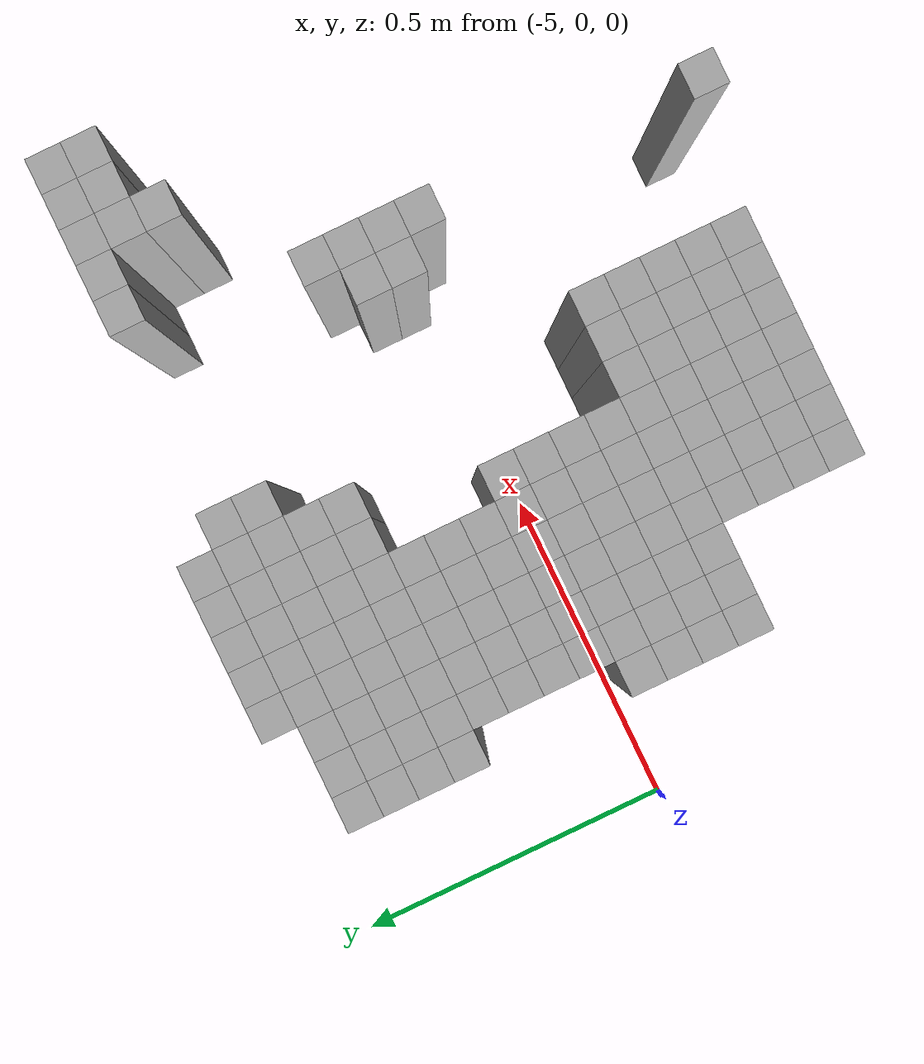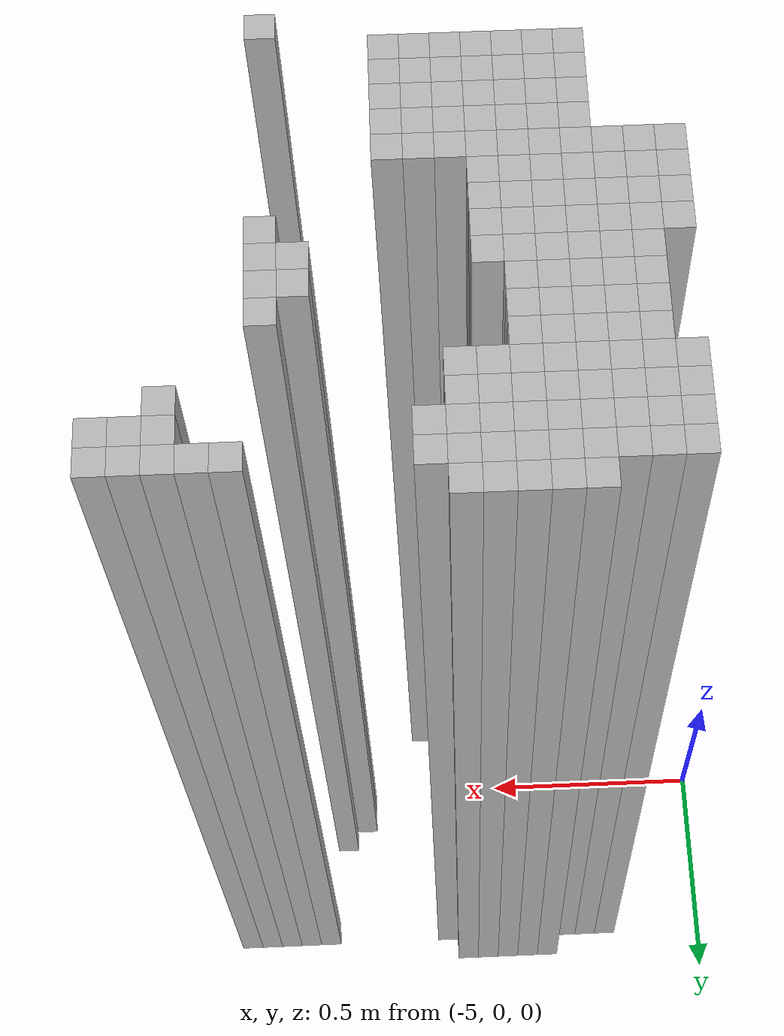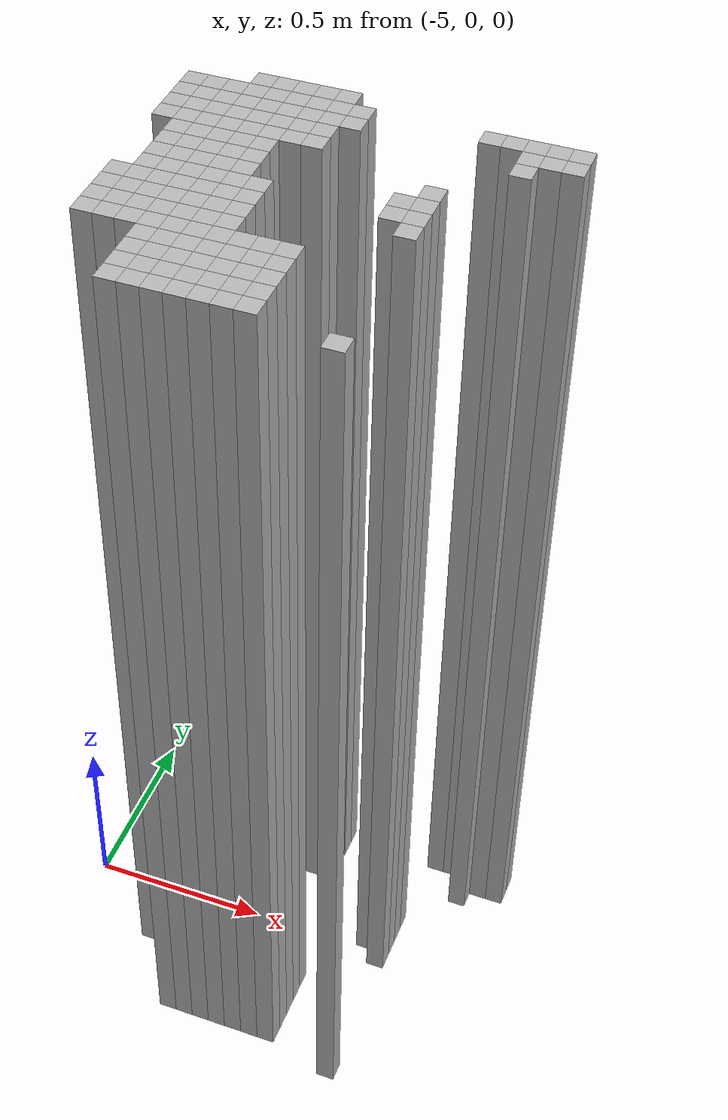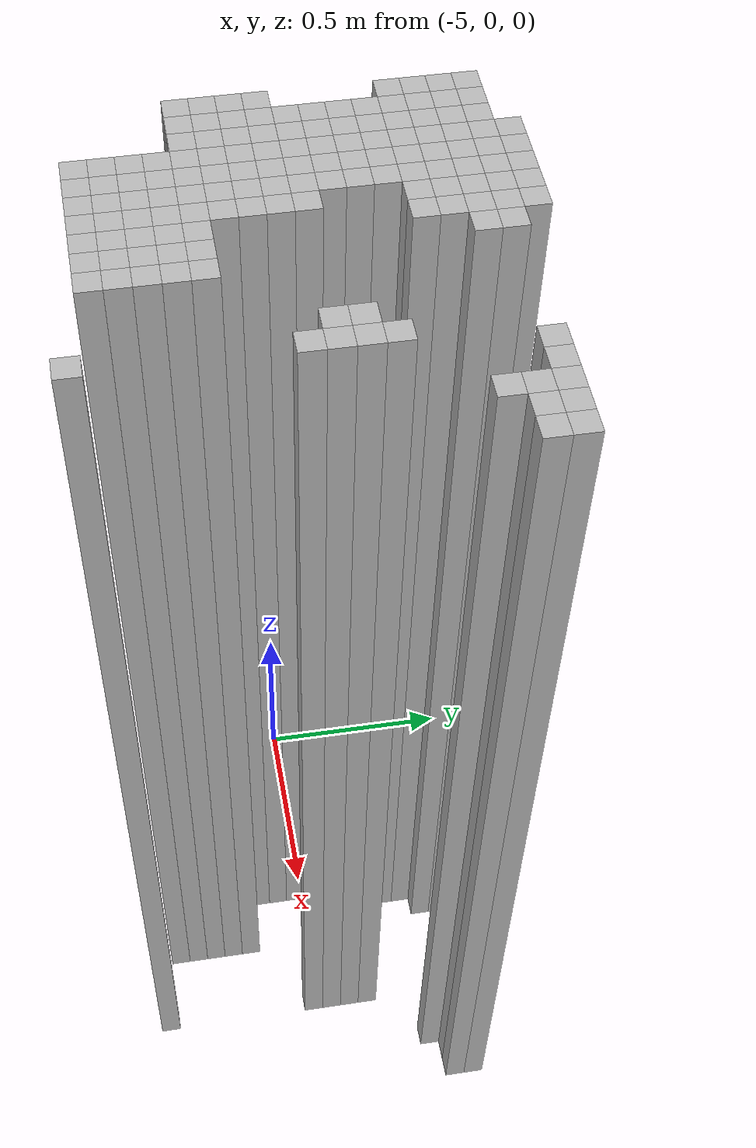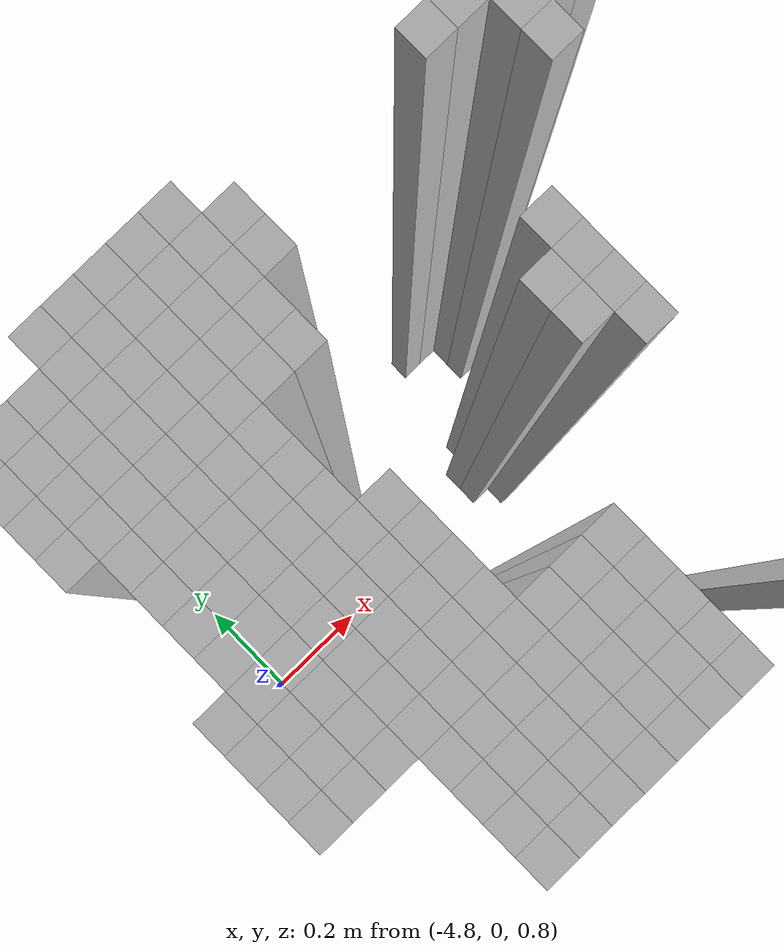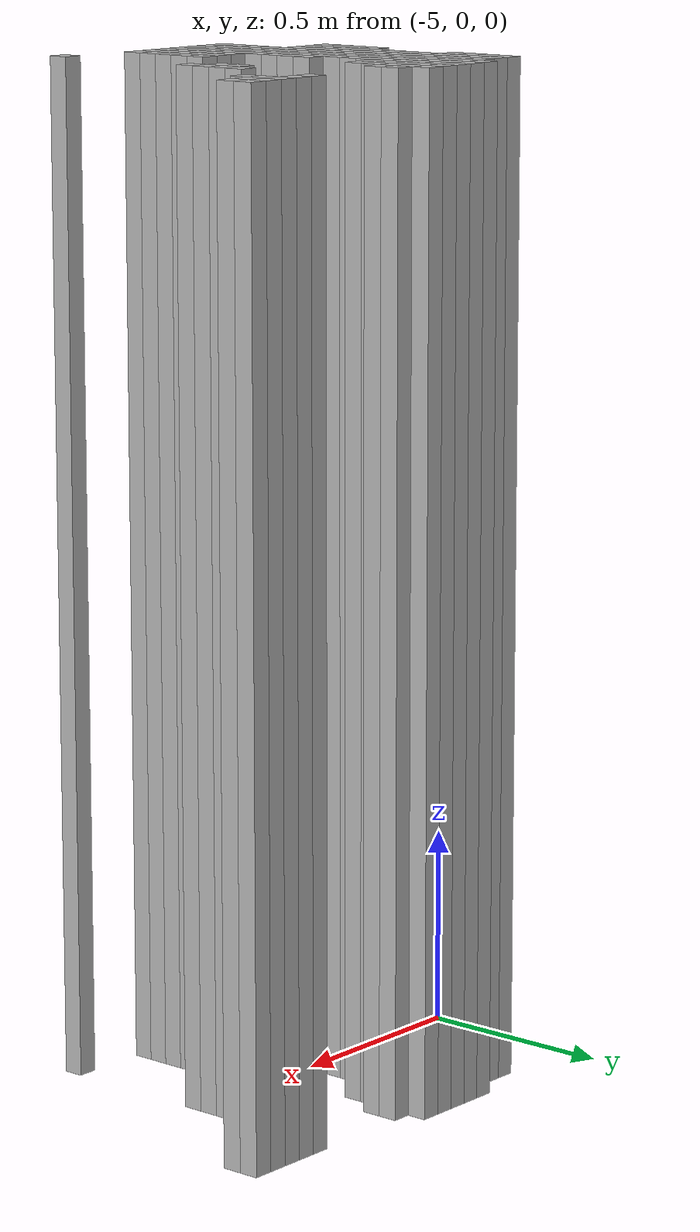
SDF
<sdf version="1.9">
 <world name="map_world">
  <model name="wall_131_145">
   <static>true</static>
   <pose>-4.611 0.430 1.250 0 0 0</pose>
   <link name="link">
    <collision name="collision"><geometry><box><size>0.050 0.050 2.500</size></box></geometry></collision>
    <visual name="visual"><geometry><box><size>0.050 0.050 2.500</size></box></geometry></visual>
   </link>
  </model>
  <model name="wall_132_145">
   <static>true</static>
   <pose>-4.561 0.430 1.250 0 0 0</pose>
   <link name="link">
    <collision name="collision"><geometry><box><size>0.050 0.050 2.500</size></box></geometry></collision>
    <visual name="visual"><geometry><box><size>0.050 0.050 2.500</size></box></geometry></visual>
   </link>
  </model>
  <model name="wall_133_145">
   <static>true</static>
   <pose>-4.511 0.430 1.250 0 0 0</pose>
   <link name="link">
    <collision name="collision"><geometry><box><size>0.050 0.050 2.500</size></box></geometry></collision>
    <visual name="visual"><geometry><box><size>0.050 0.050 2.500</size></box></geometry></visual>
   </link>
  </model>
  <model name="wall_134_145">
   <static>true</static>
   <pose>-4.461 0.430 1.250 0 0 0</pose>
   <link name="link">
    <collision name="collision"><geometry><box><size>0.050 0.050 2.500</size></box></geometry></collision>
    <visual name="visual"><geometry><box><size>0.050 0.050 2.500</size></box></geometry></visual>
   </link>
  </model>
  <model name="wall_135_145">
   <static>true</static>
   <pose>-4.411 0.430 1.250 0 0 0</pose>
   <link name="link">
    <collision name="collision"><geometry><box><size>0.050 0.050 2.500</size></box></geometry></collision>
    <visual name="visual"><geometry><box><size>0.050 0.050 2.500</size></box></geometry></visual>
   </link>
  </model>
  <model name="wall_128_146">
   <static>true</static>
   <pose>-4.761 0.380 1.250 0 0 0</pose>
   <link name="link">
    <collision name="collision"><geometry><box><size>0.050 0.050 2.500</size></box></geometry></collision>
    <visual name="visual"><geometry><box><size>0.050 0.050 2.500</size></box></geometry></visual>
   </link>
  </model>
  <model name="wall_129_146">
   <static>true</static>
   <pose>-4.711 0.380 1.250 0 0 0</pose>
   <link name="link">
    <collision name="collision"><geometry><box><size>0.050 0.050 2.500</size></box></geometry></collision>
    <visual name="visual"><geometry><box><size>0.050 0.050 2.500</size></box></geometry></visual>
   </link>
  </model>
  <model name="wall_130_146">
   <static>true</static>
   <pose>-4.661 0.380 1.250 0 0 0</pose>
   <link name="link">
    <collision name="collision"><geometry><box><size>0.050 0.050 2.500</size></box></geometry></collision>
    <visual name="visual"><geometry><box><size>0.050 0.050 2.500</size></box></geometry></visual>
   </link>
  </model>
  <model name="wall_131_146">
   <static>true</static>
   <pose>-4.611 0.380 1.250 0 0 0</pose>
   <link name="link">
    <collision name="collision"><geometry><box><size>0.050 0.050 2.500</size></box></geometry></collision>
    <visual name="visual"><geometry><box><size>0.050 0.050 2.500</size></box></geometry></visual>
   </link>
  </model>
  <model name="wall_132_146">
   <static>true</static>
   <pose>-4.561 0.380 1.250 0 0 0</pose>
   <link name="link">
    <collision name="collision"><geometry><box><size>0.050 0.050 2.500</size></box></geometry></collision>
    <visual name="visual"><geometry><box><size>0.050 0.050 2.500</size></box></geometry></visual>
   </link>
  </model>
  <model name="wall_133_146">
   <static>true</static>
   <pose>-4.511 0.380 1.250 0 0 0</pose>
   <link name="link">
    <collision name="collision"><geometry><box><size>0.050 0.050 2.500</size></box></geometry></collision>
    <visual name="visual"><geometry><box><size>0.050 0.050 2.500</size></box></geometry></visual>
   </link>
  </model>
  <model name="wall_134_146">
   <static>true</static>
   <pose>-4.461 0.380 1.250 0 0 0</pose>
   <link name="link">
    <collision name="collision"><geometry><box><size>0.050 0.050 2.500</size></box></geometry></collision>
    <visual name="visual"><geometry><box><size>0.050 0.050 2.500</size></box></geometry></visual>
   </link>
  </model>
  <model name="wall_135_146">
   <static>true</static>
   <pose>-4.411 0.380 1.250 0 0 0</pose>
   <link name="link">
    <collision name="collision"><geometry><box><size>0.050 0.050 2.500</size></box></geometry></collision>
    <visual name="visual"><geometry><box><size>0.050 0.050 2.500</size></box></geometry></visual>
   </link>
  </model>
  <model name="wall_136_146">
   <static>true</static>
   <pose>-4.361 0.380 1.250 0 0 0</pose>
   <link name="link">
    <collision name="collision"><geometry><box><size>0.050 0.050 2.500</size></box></geometry></collision>
    <visual name="visual"><geometry><box><size>0.050 0.050 2.500</size></box></geometry></visual>
   </link>
  </model>
  <model name="wall_142_146">
   <static>true</static>
   <pose>-4.061 0.380 1.250 0 0 0</pose>
   <link name="link">
    <collision name="collision"><geometry><box><size>0.050 0.050 2.500</size></box></geometry></collision>
    <visual name="visual"><geometry><box><size>0.050 0.050 2.500</size></box></geometry></visual>
   </link>
  </model>
  <model name="wall_143_146">
   <static>true</static>
   <pose>-4.011 0.380 1.250 0 0 0</pose>
   <link name="link">
    <collision name="collision"><geometry><box><size>0.050 0.050 2.500</size></box></geometry></collision>
    <visual name="visual"><geometry><box><size>0.050 0.050 2.500</size></box></geometry></visual>
   </link>
  </model>
  <model name="wall_144_146">
   <static>true</static>
   <pose>-3.961 0.380 1.250 0 0 0</pose>
   <link name="link">
    <collision name="collision"><geometry><box><size>0.050 0.050 2.500</size></box></geometry></collision>
    <visual name="visual"><geometry><box><size>0.050 0.050 2.500</size></box></geometry></visual>
   </link>
  </model>
  <model name="wall_145_146">
   <static>true</static>
   <pose>-3.911 0.380 1.250 0 0 0</pose>
   <link name="link">
    <collision name="collision"><geometry><box><size>0.050 0.050 2.500</size></box></geometry></collision>
    <visual name="visual"><geometry><box><size>0.050 0.050 2.500</size></box></geometry></visual>
   </link>
  </model>
  <model name="wall_146_146">
   <static>true</static>
   <pose>-3.861 0.380 1.250 0 0 0</pose>
   <link name="link">
    <collision name="collision"><geometry><box><size>0.050 0.050 2.500</size></box></geometry></collision>
    <visual name="visual"><geometry><box><size>0.050 0.050 2.500</size></box></geometry></visual>
   </link>
  </model>
  <model name="wall_128_147">
   <static>true</static>
   <pose>-4.761 0.330 1.250 0 0 0</pose>
   <link name="link">
    <collision name="collision"><geometry><box><size>0.050 0.050 2.500</size></box></geometry></collision>
    <visual name="visual"><geometry><box><size>0.050 0.050 2.500</size></box></geometry></visual>
   </link>
  </model>
  <model name="wall_129_147">
   <static>true</static>
   <pose>-4.711 0.330 1.250 0 0 0</pose>
   <link name="link">
    <collision name="collision"><geometry><box><size>0.050 0.050 2.500</size></box></geometry></collision>
    <visual name="visual"><geometry><box><size>0.050 0.050 2.500</size></box></geometry></visual>
   </link>
  </model>
  <model name="wall_130_147">
   <static>true</static>
   <pose>-4.661 0.330 1.250 0 0 0</pose>
   <link name="link">
    <collision name="collision"><geometry><box><size>0.050 0.050 2.500</size></box></geometry></collision>
    <visual name="visual"><geometry><box><size>0.050 0.050 2.500</size></box></geometry></visual>
   </link>
  </model>
  <model name="wall_131_147">
   <static>true</static>
   <pose>-4.611 0.330 1.250 0 0 0</pose>
   <link name="link">
    <collision name="collision"><geometry><box><size>0.050 0.050 2.500</size></box></geometry></collision>
    <visual name="visual"><geometry><box><size>0.050 0.050 2.500</size></box></geometry></visual>
   </link>
  </model>
  <model name="wall_132_147">
   <static>true</static>
   <pose>-4.561 0.330 1.250 0 0 0</pose>
   <link name="link">
    <collision name="collision"><geometry><box><size>0.050 0.050 2.500</size></box></geometry></collision>
    <visual name="visual"><geometry><box><size>0.050 0.050 2.500</size></box></geometry></visual>
   </link>
  </model>
  <model name="wall_133_147">
   <static>true</static>
   <pose>-4.511 0.330 1.250 0 0 0</pose>
   <link name="link">
    <collision name="collision"><geometry><box><size>0.050 0.050 2.500</size></box></geometry></collision>
    <visual name="visual"><geometry><box><size>0.050 0.050 2.500</size></box></geometry></visual>
   </link>
  </model>
  <model name="wall_134_147">
   <static>true</static>
   <pose>-4.461 0.330 1.250 0 0 0</pose>
   <link name="link">
    <collision name="collision"><geometry><box><size>0.050 0.050 2.500</size></box></geometry></collision>
    <visual name="visual"><geometry><box><size>0.050 0.050 2.500</size></box></geometry></visual>
   </link>
  </model>
  <model name="wall_135_147">
   <static>true</static>
   <pose>-4.411 0.330 1.250 0 0 0</pose>
   <link name="link">
    <collision name="collision"><geometry><box><size>0.050 0.050 2.500</size></box></geometry></collision>
    <visual name="visual"><geometry><box><size>0.050 0.050 2.500</size></box></geometry></visual>
   </link>
  </model>
  <model name="wall_136_147">
   <static>true</static>
   <pose>-4.361 0.330 1.250 0 0 0</pose>
   <link name="link">
    <collision name="collision"><geometry><box><size>0.050 0.050 2.500</size></box></geometry></collision>
    <visual name="visual"><geometry><box><size>0.050 0.050 2.500</size></box></geometry></visual>
   </link>
  </model>
  <model name="wall_144_147">
   <static>true</static>
   <pose>-3.961 0.330 1.250 0 0 0</pose>
   <link name="link">
    <collision name="collision"><geometry><box><size>0.050 0.050 2.500</size></box></geometry></collision>
    <visual name="visual"><geometry><box><size>0.050 0.050 2.500</size></box></geometry></visual>
   </link>
  </model>
  <model name="wall_145_147">
   <static>true</static>
   <pose>-3.911 0.330 1.250 0 0 0</pose>
   <link name="link">
    <collision name="collision"><geometry><box><size>0.050 0.050 2.500</size></box></geometry></collision>
    <visual name="visual"><geometry><box><size>0.050 0.050 2.500</size></box></geometry></visual>
   </link>
  </model>
  <model name="wall_146_147">
   <static>true</static>
   <pose>-3.861 0.330 1.250 0 0 0</pose>
   <link name="link">
    <collision name="collision"><geometry><box><size>0.050 0.050 2.500</size></box></geometry></collision>
    <visual name="visual"><geometry><box><size>0.050 0.050 2.500</size></box></geometry></visual>
   </link>
  </model>
  <model name="wall_128_148">
   <static>true</static>
   <pose>-4.761 0.280 1.250 0 0 0</pose>
   <link name="link">
    <collision name="collision"><geometry><box><size>0.050 0.050 2.500</size></box></geometry></collision>
    <visual name="visual"><geometry><box><size>0.050 0.050 2.500</size></box></geometry></visual>
   </link>
  </model>
  <model name="wall_129_148">
   <static>true</static>
   <pose>-4.711 0.280 1.250 0 0 0</pose>
   <link name="link">
    <collision name="collision"><geometry><box><size>0.050 0.050 2.500</size></box></geometry></collision>
    <visual name="visual"><geometry><box><size>0.050 0.050 2.500</size></box></geometry></visual>
   </link>
  </model>
  <model name="wall_130_148">
   <static>true</static>
   <pose>-4.661 0.280 1.250 0 0 0</pose>
   <link name="link">
    <collision name="collision"><geometry><box><size>0.050 0.050 2.500</size></box></geometry></collision>
    <visual name="visual"><geometry><box><size>0.050 0.050 2.500</size></box></geometry></visual>
   </link>
  </model>
  <model name="wall_131_148">
   <static>true</static>
   <pose>-4.611 0.280 1.250 0 0 0</pose>
   <link name="link">
    <collision name="collision"><geometry><box><size>0.050 0.050 2.500</size></box></geometry></collision>
    <visual name="visual"><geometry><box><size>0.050 0.050 2.500</size></box></geometry></visual>
   </link>
  </model>
  <model name="wall_132_148">
   <static>true</static>
   <pose>-4.561 0.280 1.250 0 0 0</pose>
   <link name="link">
    <collision name="collision"><geometry><box><size>0.050 0.050 2.500</size></box></geometry></collision>
    <visual name="visual"><geometry><box><size>0.050 0.050 2.500</size></box></geometry></visual>
   </link>
  </model>
  <model name="wall_133_148">
   <static>true</static>
   <pose>-4.511 0.280 1.250 0 0 0</pose>
   <link name="link">
    <collision name="collision"><geometry><box><size>0.050 0.050 2.500</size></box></geometry></collision>
    <visual name="visual"><geometry><box><size>0.050 0.050 2.500</size></box></geometry></visual>
   </link>
  </model>
  <model name="wall_134_148">
   <static>true</static>
   <pose>-4.461 0.280 1.250 0 0 0</pose>
   <link name="link">
    <collision name="collision"><geometry><box><size>0.050 0.050 2.500</size></box></geometry></collision>
    <visual name="visual"><geometry><box><size>0.050 0.050 2.500</size></box></geometry></visual>
   </link>
  </model>
  <model name="wall_135_148">
   <static>true</static>
   <pose>-4.411 0.280 1.250 0 0 0</pose>
   <link name="link">
    <collision name="collision"><geometry><box><size>0.050 0.050 2.500</size></box></geometry></collision>
    <visual name="visual"><geometry><box><size>0.050 0.050 2.500</size></box></geometry></visual>
   </link>
  </model>
  <model name="wall_144_148">
   <static>true</static>
   <pose>-3.961 0.280 1.250 0 0 0</pose>
   <link name="link">
    <collision name="collision"><geometry><box><size>0.050 0.050 2.500</size></box></geometry></collision>
    <visual name="visual"><geometry><box><size>0.050 0.050 2.500</size></box></geometry></visual>
   </link>
  </model>
  <model name="wall_128_149">
   <static>true</static>
   <pose>-4.761 0.230 1.250 0 0 0</pose>
   <link name="link">
    <collision name="collision"><geometry><box><size>0.050 0.050 2.500</size></box></geometry></collision>
    <visual name="visual"><geometry><box><size>0.050 0.050 2.500</size></box></geometry></visual>
   </link>
  </model>
  <model name="wall_129_149">
   <static>true</static>
   <pose>-4.711 0.230 1.250 0 0 0</pose>
   <link name="link">
    <collision name="collision"><geometry><box><size>0.050 0.050 2.500</size></box></geometry></collision>
    <visual name="visual"><geometry><box><size>0.050 0.050 2.500</size></box></geometry></visual>
   </link>
  </model>
  <model name="wall_130_149">
   <static>true</static>
   <pose>-4.661 0.230 1.250 0 0 0</pose>
   <link name="link">
    <collision name="collision"><geometry><box><size>0.050 0.050 2.500</size></box></geometry></collision>
    <visual name="visual"><geometry><box><size>0.050 0.050 2.500</size></box></geometry></visual>
   </link>
  </model>
  <model name="wall_131_149">
   <static>true</static>
   <pose>-4.611 0.230 1.250 0 0 0</pose>
   <link name="link">
    <collision name="collision"><geometry><box><size>0.050 0.050 2.500</size></box></geometry></collision>
    <visual name="visual"><geometry><box><size>0.050 0.050 2.500</size></box></geometry></visual>
   </link>
  </model>
  <model name="wall_132_149">
   <static>true</static>
   <pose>-4.561 0.230 1.250 0 0 0</pose>
   <link name="link">
    <collision name="collision"><geometry><box><size>0.050 0.050 2.500</size></box></geometry></collision>
    <visual name="visual"><geometry><box><size>0.050 0.050 2.500</size></box></geometry></visual>
   </link>
  </model>
  <model name="wall_133_149">
   <static>true</static>
   <pose>-4.511 0.230 1.250 0 0 0</pose>
   <link name="link">
    <collision name="collision"><geometry><box><size>0.050 0.050 2.500</size></box></geometry></collision>
    <visual name="visual"><geometry><box><size>0.050 0.050 2.500</size></box></geometry></visual>
   </link>
  </model>
  <model name="wall_134_149">
   <static>true</static>
   <pose>-4.461 0.230 1.250 0 0 0</pose>
   <link name="link">
    <collision name="collision"><geometry><box><size>0.050 0.050 2.500</size></box></geometry></collision>
    <visual name="visual"><geometry><box><size>0.050 0.050 2.500</size></box></geometry></visual>
   </link>
  </model>
  <model name="wall_135_149">
   <static>true</static>
   <pose>-4.411 0.230 1.250 0 0 0</pose>
   <link name="link">
    <collision name="collision"><geometry><box><size>0.050 0.050 2.500</size></box></geometry></collision>
    <visual name="visual"><geometry><box><size>0.050 0.050 2.500</size></box></geometry></visual>
   </link>
  </model>
  <model name="wall_129_150">
   <static>true</static>
   <pose>-4.711 0.180 1.250 0 0 0</pose>
   <link name="link">
    <collision name="collision"><geometry><box><size>0.050 0.050 2.500</size></box></geometry></collision>
    <visual name="visual"><geometry><box><size>0.050 0.050 2.500</size></box></geometry></visual>
   </link>
  </model>
  <model name="wall_130_150">
   <static>true</static>
   <pose>-4.661 0.180 1.250 0 0 0</pose>
   <link name="link">
    <collision name="collision"><geometry><box><size>0.050 0.050 2.500</size></box></geometry></collision>
    <visual name="visual"><geometry><box><size>0.050 0.050 2.500</size></box></geometry></visual>
   </link>
  </model>
  <model name="wall_131_150">
   <static>true</static>
   <pose>-4.611 0.180 1.250 0 0 0</pose>
   <link name="link">
    <collision name="collision"><geometry><box><size>0.050 0.050 2.500</size></box></geometry></collision>
    <visual name="visual"><geometry><box><size>0.050 0.050 2.500</size></box></geometry></visual>
   </link>
  </model>
  <model name="wall_132_150">
   <static>true</static>
   <pose>-4.561 0.180 1.250 0 0 0</pose>
   <link name="link">
    <collision name="collision"><geometry><box><size>0.050 0.050 2.500</size></box></geometry></collision>
    <visual name="visual"><geometry><box><size>0.050 0.050 2.500</size></box></geometry></visual>
   </link>
  </model>
  <model name="wall_133_150">
   <static>true</static>
   <pose>-4.511 0.180 1.250 0 0 0</pose>
   <link name="link">
    <collision name="collision"><geometry><box><size>0.050 0.050 2.500</size></box></geometry></collision>
    <visual name="visual"><geometry><box><size>0.050 0.050 2.500</size></box></geometry></visual>
   </link>
  </model>
  <model name="wall_129_151">
   <static>true</static>
   <pose>-4.711 0.130 1.250 0 0 0</pose>
   <link name="link">
    <collision name="collision"><geometry><box><size>0.050 0.050 2.500</size></box></geometry></collision>
    <visual name="visual"><geometry><box><size>0.050 0.050 2.500</size></box></geometry></visual>
   </link>
  </model>
  <model name="wall_130_151">
   <static>true</static>
   <pose>-4.661 0.130 1.250 0 0 0</pose>
   <link name="link">
    <collision name="collision"><geometry><box><size>0.050 0.050 2.500</size></box></geometry></collision>
    <visual name="visual"><geometry><box><size>0.050 0.050 2.500</size></box></geometry></visual>
   </link>
  </model>
  <model name="wall_131_151">
   <static>true</static>
   <pose>-4.611 0.130 1.250 0 0 0</pose>
   <link name="link">
    <collision name="collision"><geometry><box><size>0.050 0.050 2.500</size></box></geometry></collision>
    <visual name="visual"><geometry><box><size>0.050 0.050 2.500</size></box></geometry></visual>
   </link>
  </model>
  <model name="wall_132_151">
   <static>true</static>
   <pose>-4.561 0.130 1.250 0 0 0</pose>
   <link name="link">
    <collision name="collision"><geometry><box><size>0.050 0.050 2.500</size></box></geometry></collision>
    <visual name="visual"><geometry><box><size>0.050 0.050 2.500</size></box></geometry></visual>
   </link>
  </model>
  <model name="wall_133_151">
   <static>true</static>
   <pose>-4.511 0.130 1.250 0 0 0</pose>
   <link name="link">
    <collision name="collision"><geometry><box><size>0.050 0.050 2.500</size></box></geometry></collision>
    <visual name="visual"><geometry><box><size>0.050 0.050 2.500</size></box></geometry></visual>
   </link>
  </model>
  <model name="wall_141_151">
   <static>true</static>
   <pose>-4.111 0.130 1.250 0 0 0</pose>
   <link name="link">
    <collision name="collision"><geometry><box><size>0.050 0.050 2.500</size></box></geometry></collision>
    <visual name="visual"><geometry><box><size>0.050 0.050 2.500</size></box></geometry></visual>
   </link>
  </model>
  <model name="wall_129_152">
   <static>true</static>
   <pose>-4.711 0.080 1.250 0 0 0</pose>
   <link name="link">
    <collision name="collision"><geometry><box><size>0.050 0.050 2.500</size></box></geometry></collision>
    <visual name="visual"><geometry><box><size>0.050 0.050 2.500</size></box></geometry></visual>
   </link>
  </model>
  <model name="wall_130_152">
   <static>true</static>
   <pose>-4.661 0.080 1.250 0 0 0</pose>
   <link name="link">
    <collision name="collision"><geometry><box><size>0.050 0.050 2.500</size></box></geometry></collision>
    <visual name="visual"><geometry><box><size>0.050 0.050 2.500</size></box></geometry></visual>
   </link>
  </model>
  <model name="wall_131_152">
   <static>true</static>
   <pose>-4.611 0.080 1.250 0 0 0</pose>
   <link name="link">
    <collision name="collision"><geometry><box><size>0.050 0.050 2.500</size></box></geometry></collision>
    <visual name="visual"><geometry><box><size>0.050 0.050 2.500</size></box></geometry></visual>
   </link>
  </model>
  <model name="wall_132_152">
   <static>true</static>
   <pose>-4.561 0.080 1.250 0 0 0</pose>
   <link name="link">
    <collision name="collision"><geometry><box><size>0.050 0.050 2.500</size></box></geometry></collision>
    <visual name="visual"><geometry><box><size>0.050 0.050 2.500</size></box></geometry></visual>
   </link>
  </model>
  <model name="wall_133_152">
   <static>true</static>
   <pose>-4.511 0.080 1.250 0 0 0</pose>
   <link name="link">
    <collision name="collision"><geometry><box><size>0.050 0.050 2.500</size></box></geometry></collision>
    <visual name="visual"><geometry><box><size>0.050 0.050 2.500</size></box></geometry></visual>
   </link>
  </model>
  <model name="wall_140_152">
   <static>true</static>
   <pose>-4.161 0.080 1.250 0 0 0</pose>
   <link name="link">
    <collision name="collision"><geometry><box><size>0.050 0.050 2.500</size></box></geometry></collision>
    <visual name="visual"><geometry><box><size>0.050 0.050 2.500</size></box></geometry></visual>
   </link>
  </model>
  <model name="wall_141_152">
   <static>true</static>
   <pose>-4.111 0.080 1.250 0 0 0</pose>
   <link name="link">
    <collision name="collision"><geometry><box><size>0.050 0.050 2.500</size></box></geometry></collision>
    <visual name="visual"><geometry><box><size>0.050 0.050 2.500</size></box></geometry></visual>
   </link>
  </model>
  <model name="wall_129_153">
   <static>true</static>
   <pose>-4.711 0.030 1.250 0 0 0</pose>
   <link name="link">
    <collision name="collision"><geometry><box><size>0.050 0.050 2.500</size></box></geometry></collision>
    <visual name="visual"><geometry><box><size>0.050 0.050 2.500</size></box></geometry></visual>
   </link>
  </model>
  <model name="wall_130_153">
   <static>true</static>
   <pose>-4.661 0.030 1.250 0 0 0</pose>
   <link name="link">
    <collision name="collision"><geometry><box><size>0.050 0.050 2.500</size></box></geometry></collision>
    <visual name="visual"><geometry><box><size>0.050 0.050 2.500</size></box></geometry></visual>
   </link>
  </model>
  <model name="wall_131_153">
   <static>true</static>
   <pose>-4.611 0.030 1.250 0 0 0</pose>
   <link name="link">
    <collision name="collision"><geometry><box><size>0.050 0.050 2.500</size></box></geometry></collision>
    <visual name="visual"><geometry><box><size>0.050 0.050 2.500</size></box></geometry></visual>
   </link>
  </model>
  <model name="wall_132_153">
   <static>true</static>
   <pose>-4.561 0.030 1.250 0 0 0</pose>
   <link name="link">
    <collision name="collision"><geometry><box><size>0.050 0.050 2.500</size></box></geometry></collision>
    <visual name="visual"><geometry><box><size>0.050 0.050 2.500</size></box></geometry></visual>
   </link>
  </model>
  <model name="wall_133_153">
   <static>true</static>
   <pose>-4.511 0.030 1.250 0 0 0</pose>
   <link name="link">
    <collision name="collision"><geometry><box><size>0.050 0.050 2.500</size></box></geometry></collision>
    <visual name="visual"><geometry><box><size>0.050 0.050 2.500</size></box></geometry></visual>
   </link>
  </model>
  <model name="wall_134_153">
   <static>true</static>
   <pose>-4.461 0.030 1.250 0 0 0</pose>
   <link name="link">
    <collision name="collision"><geometry><box><size>0.050 0.050 2.500</size></box></geometry></collision>
    <visual name="visual"><geometry><box><size>0.050 0.050 2.500</size></box></geometry></visual>
   </link>
  </model>
  <model name="wall_140_153">
   <static>true</static>
   <pose>-4.161 0.030 1.250 0 0 0</pose>
   <link name="link">
    <collision name="collision"><geometry><box><size>0.050 0.050 2.500</size></box></geometry></collision>
    <visual name="visual"><geometry><box><size>0.050 0.050 2.500</size></box></geometry></visual>
   </link>
  </model>
  <model name="wall_141_153">
   <static>true</static>
   <pose>-4.111 0.030 1.250 0 0 0</pose>
   <link name="link">
    <collision name="collision"><geometry><box><size>0.050 0.050 2.500</size></box></geometry></collision>
    <visual name="visual"><geometry><box><size>0.050 0.050 2.500</size></box></geometry></visual>
   </link>
  </model>
  <model name="wall_128_154">
   <static>true</static>
   <pose>-4.761 -0.020 1.250 0 0 0</pose>
   <link name="link">
    <collision name="collision"><geometry><box><size>0.050 0.050 2.500</size></box></geometry></collision>
    <visual name="visual"><geometry><box><size>0.050 0.050 2.500</size></box></geometry></visual>
   </link>
  </model>
  <model name="wall_129_154">
   <static>true</static>
   <pose>-4.711 -0.020 1.250 0 0 0</pose>
   <link name="link">
    <collision name="collision"><geometry><box><size>0.050 0.050 2.500</size></box></geometry></collision>
    <visual name="visual"><geometry><box><size>0.050 0.050 2.500</size></box></geometry></visual>
   </link>
  </model>
  <model name="wall_130_154">
   <static>true</static>
   <pose>-4.661 -0.020 1.250 0 0 0</pose>
   <link name="link">
    <collision name="collision"><geometry><box><size>0.050 0.050 2.500</size></box></geometry></collision>
    <visual name="visual"><geometry><box><size>0.050 0.050 2.500</size></box></geometry></visual>
   </link>
  </model>
  <model name="wall_131_154">
   <static>true</static>
   <pose>-4.611 -0.020 1.250 0 0 0</pose>
   <link name="link">
    <collision name="collision"><geometry><box><size>0.050 0.050 2.500</size></box></geometry></collision>
    <visual name="visual"><geometry><box><size>0.050 0.050 2.500</size></box></geometry></visual>
   </link>
  </model>
  <model name="wall_132_154">
   <static>true</static>
   <pose>-4.561 -0.020 1.250 0 0 0</pose>
   <link name="link">
    <collision name="collision"><geometry><box><size>0.050 0.050 2.500</size></box></geometry></collision>
    <visual name="visual"><geometry><box><size>0.050 0.050 2.500</size></box></geometry></visual>
   </link>
  </model>
  <model name="wall_133_154">
   <static>true</static>
   <pose>-4.511 -0.020 1.250 0 0 0</pose>
   <link name="link">
    <collision name="collision"><geometry><box><size>0.050 0.050 2.500</size></box></geometry></collision>
    <visual name="visual"><geometry><box><size>0.050 0.050 2.500</size></box></geometry></visual>
   </link>
  </model>
  <model name="wall_134_154">
   <static>true</static>
   <pose>-4.461 -0.020 1.250 0 0 0</pose>
   <link name="link">
    <collision name="collision"><geometry><box><size>0.050 0.050 2.500</size></box></geometry></collision>
    <visual name="visual"><geometry><box><size>0.050 0.050 2.500</size></box></geometry></visual>
   </link>
  </model>
  <model name="wall_141_154">
   <static>true</static>
   <pose>-4.111 -0.020 1.250 0 0 0</pose>
   <link name="link">
    <collision name="collision"><geometry><box><size>0.050 0.050 2.500</size></box></geometry></collision>
    <visual name="visual"><geometry><box><size>0.050 0.050 2.500</size></box></geometry></visual>
   </link>
  </model>
  <model name="wall_128_155">
   <static>true</static>
   <pose>-4.761 -0.070 1.250 0 0 0</pose>
   <link name="link">
    <collision name="collision"><geometry><box><size>0.050 0.050 2.500</size></box></geometry></collision>
    <visual name="visual"><geometry><box><size>0.050 0.050 2.500</size></box></geometry></visual>
   </link>
  </model>
  <model name="wall_129_155">
   <static>true</static>
   <pose>-4.711 -0.070 1.250 0 0 0</pose>
   <link name="link">
    <collision name="collision"><geometry><box><size>0.050 0.050 2.500</size></box></geometry></collision>
    <visual name="visual"><geometry><box><size>0.050 0.050 2.500</size></box></geometry></visual>
   </link>
  </model>
  <model name="wall_130_155">
   <static>true</static>
   <pose>-4.661 -0.070 1.250 0 0 0</pose>
   <link name="link">
    <collision name="collision"><geometry><box><size>0.050 0.050 2.500</size></box></geometry></collision>
    <visual name="visual"><geometry><box><size>0.050 0.050 2.500</size></box></geometry></visual>
   </link>
  </model>
  <model name="wall_131_155">
   <static>true</static>
   <pose>-4.611 -0.070 1.250 0 0 0</pose>
   <link name="link">
    <collision name="collision"><geometry><box><size>0.050 0.050 2.500</size></box></geometry></collision>
    <visual name="visual"><geometry><box><size>0.050 0.050 2.500</size></box></geometry></visual>
   </link>
  </model>
  <model name="wall_132_155">
   <static>true</static>
   <pose>-4.561 -0.070 1.250 0 0 0</pose>
   <link name="link">
    <collision name="collision"><geometry><box><size>0.050 0.050 2.500</size></box></geometry></collision>
    <visual name="visual"><geometry><box><size>0.050 0.050 2.500</size></box></geometry></visual>
   </link>
  </model>
  <model name="wall_133_155">
   <static>true</static>
   <pose>-4.511 -0.070 1.250 0 0 0</pose>
   <link name="link">
    <collision name="collision"><geometry><box><size>0.050 0.050 2.500</size></box></geometry></collision>
    <visual name="visual"><geometry><box><size>0.050 0.050 2.500</size></box></geometry></visual>
   </link>
  </model>
  <model name="wall_134_155">
   <static>true</static>
   <pose>-4.461 -0.070 1.250 0 0 0</pose>
   <link name="link">
    <collision name="collision"><geometry><box><size>0.050 0.050 2.500</size></box></geometry></collision>
    <visual name="visual"><geometry><box><size>0.050 0.050 2.500</size></box></geometry></visual>
   </link>
  </model>
  <model name="wall_128_156">
   <static>true</static>
   <pose>-4.761 -0.120 1.250 0 0 0</pose>
   <link name="link">
    <collision name="collision"><geometry><box><size>0.050 0.050 2.500</size></box></geometry></collision>
    <visual name="visual"><geometry><box><size>0.050 0.050 2.500</size></box></geometry></visual>
   </link>
  </model>
  <model name="wall_129_156">
   <static>true</static>
   <pose>-4.711 -0.120 1.250 0 0 0</pose>
   <link name="link">
    <collision name="collision"><geometry><box><size>0.050 0.050 2.500</size></box></geometry></collision>
    <visual name="visual"><geometry><box><size>0.050 0.050 2.500</size></box></geometry></visual>
   </link>
  </model>
  <model name="wall_130_156">
   <static>true</static>
   <pose>-4.661 -0.120 1.250 0 0 0</pose>
   <link name="link">
    <collision name="collision"><geometry><box><size>0.050 0.050 2.500</size></box></geometry></collision>
    <visual name="visual"><geometry><box><size>0.050 0.050 2.500</size></box></geometry></visual>
   </link>
  </model>
  <model name="wall_131_156">
   <static>true</static>
   <pose>-4.611 -0.120 1.250 0 0 0</pose>
   <link name="link">
    <collision name="collision"><geometry><box><size>0.050 0.050 2.500</size></box></geometry></collision>
    <visual name="visual"><geometry><box><size>0.050 0.050 2.500</size></box></geometry></visual>
   </link>
  </model>
  <model name="wall_132_156">
   <static>true</static>
   <pose>-4.561 -0.120 1.250 0 0 0</pose>
   <link name="link">
    <collision name="collision"><geometry><box><size>0.050 0.050 2.500</size></box></geometry></collision>
    <visual name="visual"><geometry><box><size>0.050 0.050 2.500</size></box></geometry></visual>
   </link>
  </model>
  <model name="wall_133_156">
   <static>true</static>
   <pose>-4.511 -0.120 1.250 0 0 0</pose>
   <link name="link">
    <collision name="collision"><geometry><box><size>0.050 0.050 2.500</size></box></geometry></collision>
    <visual name="visual"><geometry><box><size>0.050 0.050 2.500</size></box></geometry></visual>
   </link>
  </model>
  <model name="wall_134_156">
   <static>true</static>
   <pose>-4.461 -0.120 1.250 0 0 0</pose>
   <link name="link">
    <collision name="collision"><geometry><box><size>0.050 0.050 2.500</size></box></geometry></collision>
    <visual name="visual"><geometry><box><size>0.050 0.050 2.500</size></box></geometry></visual>
   </link>
  </model>
  <model name="wall_128_157">
   <static>true</static>
   <pose>-4.761 -0.170 1.250 0 0 0</pose>
   <link name="link">
    <collision name="collision"><geometry><box><size>0.050 0.050 2.500</size></box></geometry></collision>
    <visual name="visual"><geometry><box><size>0.050 0.050 2.500</size></box></geometry></visual>
   </link>
  </model>
  <model name="wall_129_157">
   <static>true</static>
   <pose>-4.711 -0.170 1.250 0 0 0</pose>
   <link name="link">
    <collision name="collision"><geometry><box><size>0.050 0.050 2.500</size></box></geometry></collision>
    <visual name="visual"><geometry><box><size>0.050 0.050 2.500</size></box></geometry></visual>
   </link>
  </model>
  <model name="wall_130_157">
   <static>true</static>
   <pose>-4.661 -0.170 1.250 0 0 0</pose>
   <link name="link">
    <collision name="collision"><geometry><box><size>0.050 0.050 2.500</size></box></geometry></collision>
    <visual name="visual"><geometry><box><size>0.050 0.050 2.500</size></box></geometry></visual>
   </link>
  </model>
  <model name="wall_131_157">
   <static>true</static>
   <pose>-4.611 -0.170 1.250 0 0 0</pose>
   <link name="link">
    <collision name="collision"><geometry><box><size>0.050 0.050 2.500</size></box></geometry></collision>
    <visual name="visual"><geometry><box><size>0.050 0.050 2.500</size></box></geometry></visual>
   </link>
  </model>
  <model name="wall_132_157">
   <static>true</static>
   <pose>-4.561 -0.170 1.250 0 0 0</pose>
   <link name="link">
    <collision name="collision"><geometry><box><size>0.050 0.050 2.500</size></box></geometry></collision>
    <visual name="visual"><geometry><box><size>0.050 0.050 2.500</size></box></geometry></visual>
   </link>
  </model>
  <model name="wall_133_157">
   <static>true</static>
   <pose>-4.511 -0.170 1.250 0 0 0</pose>
   <link name="link">
    <collision name="collision"><geometry><box><size>0.050 0.050 2.500</size></box></geometry></collision>
    <visual name="visual"><geometry><box><size>0.050 0.050 2.500</size></box></geometry></visual>
   </link>
  </model>
  <model name="wall_134_157">
   <static>true</static>
   <pose>-4.461 -0.170 1.250 0 0 0</pose>
   <link name="link">
    <collision name="collision"><geometry><box><size>0.050 0.050 2.500</size></box></geometry></collision>
    <visual name="visual"><geometry><box><size>0.050 0.050 2.500</size></box></geometry></visual>
   </link>
  </model>
  <model name="wall_135_157">
   <static>true</static>
   <pose>-4.411 -0.170 1.250 0 0 0</pose>
   <link name="link">
    <collision name="collision"><geometry><box><size>0.050 0.050 2.500</size></box></geometry></collision>
    <visual name="visual"><geometry><box><size>0.050 0.050 2.500</size></box></geometry></visual>
   </link>
  </model>
  <model name="wall_136_157">
   <static>true</static>
   <pose>-4.361 -0.170 1.250 0 0 0</pose>
   <link name="link">
    <collision name="collision"><geometry><box><size>0.050 0.050 2.500</size></box></geometry></collision>
    <visual name="visual"><geometry><box><size>0.050 0.050 2.500</size></box></geometry></visual>
   </link>
  </model>
  <model name="wall_137_157">
   <static>true</static>
   <pose>-4.311 -0.170 1.250 0 0 0</pose>
   <link name="link">
    <collision name="collision"><geometry><box><size>0.050 0.050 2.500</size></box></geometry></collision>
    <visual name="visual"><geometry><box><size>0.050 0.050 2.500</size></box></geometry></visual>
   </link>
  </model>
  <model name="wall_131_158">
   <static>true</static>
   <pose>-4.611 -0.220 1.250 0 0 0</pose>
   <link name="link">
    <collision name="collision"><geometry><box><size>0.050 0.050 2.500</size></box></geometry></collision>
    <visual name="visual"><geometry><box><size>0.050 0.050 2.500</size></box></geometry></visual>
   </link>
  </model>
  <model name="wall_132_158">
   <static>true</static>
   <pose>-4.561 -0.220 1.250 0 0 0</pose>
   <link name="link">
    <collision name="collision"><geometry><box><size>0.050 0.050 2.500</size></box></geometry></collision>
    <visual name="visual"><geometry><box><size>0.050 0.050 2.500</size></box></geometry></visual>
   </link>
  </model>
  <model name="wall_133_158">
   <static>true</static>
   <pose>-4.511 -0.220 1.250 0 0 0</pose>
   <link name="link">
    <collision name="collision"><geometry><box><size>0.050 0.050 2.500</size></box></geometry></collision>
    <visual name="visual"><geometry><box><size>0.050 0.050 2.500</size></box></geometry></visual>
   </link>
  </model>
  <model name="wall_134_158">
   <static>true</static>
   <pose>-4.461 -0.220 1.250 0 0 0</pose>
   <link name="link">
    <collision name="collision"><geometry><box><size>0.050 0.050 2.500</size></box></geometry></collision>
    <visual name="visual"><geometry><box><size>0.050 0.050 2.500</size></box></geometry></visual>
   </link>
  </model>
  <model name="wall_135_158">
   <static>true</static>
   <pose>-4.411 -0.220 1.250 0 0 0</pose>
   <link name="link">
    <collision name="collision"><geometry><box><size>0.050 0.050 2.500</size></box></geometry></collision>
    <visual name="visual"><geometry><box><size>0.050 0.050 2.500</size></box></geometry></visual>
   </link>
  </model>
  <model name="wall_136_158">
   <static>true</static>
   <pose>-4.361 -0.220 1.250 0 0 0</pose>
   <link name="link">
    <collision name="collision"><geometry><box><size>0.050 0.050 2.500</size></box></geometry></collision>
    <visual name="visual"><geometry><box><size>0.050 0.050 2.500</size></box></geometry></visual>
   </link>
  </model>
  <model name="wall_137_158">
   <static>true</static>
   <pose>-4.311 -0.220 1.250 0 0 0</pose>
   <link name="link">
    <collision name="collision"><geometry><box><size>0.050 0.050 2.500</size></box></geometry></collision>
    <visual name="visual"><geometry><box><size>0.050 0.050 2.500</size></box></geometry></visual>
   </link>
  </model>
  <model name="wall_131_159">
   <static>true</static>
   <pose>-4.611 -0.270 1.250 0 0 0</pose>
   <link name="link">
    <collision name="collision"><geometry><box><size>0.050 0.050 2.500</size></box></geometry></collision>
    <visual name="visual"><geometry><box><size>0.050 0.050 2.500</size></box></geometry></visual>
   </link>
  </model>
  <model name="wall_132_159">
   <static>true</static>
   <pose>-4.561 -0.270 1.250 0 0 0</pose>
   <link name="link">
    <collision name="collision"><geometry><box><size>0.050 0.050 2.500</size></box></geometry></collision>
    <visual name="visual"><geometry><box><size>0.050 0.050 2.500</size></box></geometry></visual>
   </link>
  </model>
  <model name="wall_133_159">
   <static>true</static>
   <pose>-4.511 -0.270 1.250 0 0 0</pose>
   <link name="link">
    <collision name="collision"><geometry><box><size>0.050 0.050 2.500</size></box></geometry></collision>
    <visual name="visual"><geometry><box><size>0.050 0.050 2.500</size></box></geometry></visual>
   </link>
  </model>
  <model name="wall_134_159">
   <static>true</static>
   <pose>-4.461 -0.270 1.250 0 0 0</pose>
   <link name="link">
    <collision name="collision"><geometry><box><size>0.050 0.050 2.500</size></box></geometry></collision>
    <visual name="visual"><geometry><box><size>0.050 0.050 2.500</size></box></geometry></visual>
   </link>
  </model>
  <model name="wall_135_159">
   <static>true</static>
   <pose>-4.411 -0.270 1.250 0 0 0</pose>
   <link name="link">
    <collision name="collision"><geometry><box><size>0.050 0.050 2.500</size></box></geometry></collision>
    <visual name="visual"><geometry><box><size>0.050 0.050 2.500</size></box></geometry></visual>
   </link>
  </model>
  <model name="wall_136_159">
   <static>true</static>
   <pose>-4.361 -0.270 1.250 0 0 0</pose>
   <link name="link">
    <collision name="collision"><geometry><box><size>0.050 0.050 2.500</size></box></geometry></collision>
    <visual name="visual"><geometry><box><size>0.050 0.050 2.500</size></box></geometry></visual>
   </link>
  </model>
  <model name="wall_137_159">
   <static>true</static>
   <pose>-4.311 -0.270 1.250 0 0 0</pose>
   <link name="link">
    <collision name="collision"><geometry><box><size>0.050 0.050 2.500</size></box></geometry></collision>
    <visual name="visual"><geometry><box><size>0.050 0.050 2.500</size></box></geometry></visual>
   </link>
  </model>
  <model name="wall_131_160">
   <static>true</static>
   <pose>-4.611 -0.320 1.250 0 0 0</pose>
   <link name="link">
    <collision name="collision"><geometry><box><size>0.050 0.050 2.500</size></box></geometry></collision>
    <visual name="visual"><geometry><box><size>0.050 0.050 2.500</size></box></geometry></visual>
   </link>
  </model>
  <model name="wall_132_160">
   <static>true</static>
   <pose>-4.561 -0.320 1.250 0 0 0</pose>
   <link name="link">
    <collision name="collision"><geometry><box><size>0.050 0.050 2.500</size></box></geometry></collision>
    <visual name="visual"><geometry><box><size>0.050 0.050 2.500</size></box></geometry></visual>
   </link>
  </model>
  <model name="wall_133_160">
   <static>true</static>
   <pose>-4.511 -0.320 1.250 0 0 0</pose>
   <link name="link">
    <collision name="collision"><geometry><box><size>0.050 0.050 2.500</size></box></geometry></collision>
    <visual name="visual"><geometry><box><size>0.050 0.050 2.500</size></box></geometry></visual>
   </link>
  </model>
  <model name="wall_134_160">
   <static>true</static>
   <pose>-4.461 -0.320 1.250 0 0 0</pose>
   <link name="link">
    <collision name="collision"><geometry><box><size>0.050 0.050 2.500</size></box></geometry></collision>
    <visual name="visual"><geometry><box><size>0.050 0.050 2.500</size></box></geometry></visual>
   </link>
  </model>
  <model name="wall_135_160">
   <static>true</static>
   <pose>-4.411 -0.320 1.250 0 0 0</pose>
   <link name="link">
    <collision name="collision"><geometry><box><size>0.050 0.050 2.500</size></box></geometry></collision>
    <visual name="visual"><geometry><box><size>0.050 0.050 2.500</size></box></geometry></visual>
   </link>
  </model>
  <model name="wall_136_160">
   <static>true</static>
   <pose>-4.361 -0.320 1.250 0 0 0</pose>
   <link name="link">
    <collision name="collision"><geometry><box><size>0.050 0.050 2.500</size></box></geometry></collision>
    <visual name="visual"><geometry><box><size>0.050 0.050 2.500</size></box></geometry></visual>
   </link>
  </model>
  <model name="wall_137_160">
   <static>true</static>
   <pose>-4.311 -0.320 1.250 0 0 0</pose>
   <link name="link">
    <collision name="collision"><geometry><box><size>0.050 0.050 2.500</size></box></geometry></collision>
    <visual name="visual"><geometry><box><size>0.050 0.050 2.500</size></box></geometry></visual>
   </link>
  </model>
  <model name="wall_131_161">
   <static>true</static>
   <pose>-4.611 -0.370 1.250 0 0 0</pose>
   <link name="link">
    <collision name="collision"><geometry><box><size>0.050 0.050 2.500</size></box></geometry></collision>
    <visual name="visual"><geometry><box><size>0.050 0.050 2.500</size></box></geometry></visual>
   </link>
  </model>
  <model name="wall_132_161">
   <static>true</static>
   <pose>-4.561 -0.370 1.250 0 0 0</pose>
   <link name="link">
    <collision name="collision"><geometry><box><size>0.050 0.050 2.500</size></box></geometry></collision>
    <visual name="visual"><geometry><box><size>0.050 0.050 2.500</size></box></geometry></visual>
   </link>
  </model>
  <model name="wall_133_161">
   <static>true</static>
   <pose>-4.511 -0.370 1.250 0 0 0</pose>
   <link name="link">
    <collision name="collision"><geometry><box><size>0.050 0.050 2.500</size></box></geometry></collision>
    <visual name="visual"><geometry><box><size>0.050 0.050 2.500</size></box></geometry></visual>
   </link>
  </model>
  <model name="wall_134_161">
   <static>true</static>
   <pose>-4.461 -0.370 1.250 0 0 0</pose>
   <link name="link">
    <collision name="collision"><geometry><box><size>0.050 0.050 2.500</size></box></geometry></collision>
    <visual name="visual"><geometry><box><size>0.050 0.050 2.500</size></box></geometry></visual>
   </link>
  </model>
  <model name="wall_135_161">
   <static>true</static>
   <pose>-4.411 -0.370 1.250 0 0 0</pose>
   <link name="link">
    <collision name="collision"><geometry><box><size>0.050 0.050 2.500</size></box></geometry></collision>
    <visual name="visual"><geometry><box><size>0.050 0.050 2.500</size></box></geometry></visual>
   </link>
  </model>
  <model name="wall_136_161">
   <static>true</static>
   <pose>-4.361 -0.370 1.250 0 0 0</pose>
   <link name="link">
    <collision name="collision"><geometry><box><size>0.050 0.050 2.500</size></box></geometry></collision>
    <visual name="visual"><geometry><box><size>0.050 0.050 2.500</size></box></geometry></visual>
   </link>
  </model>
  <model name="wall_137_161">
   <static>true</static>
   <pose>-4.311 -0.370 1.250 0 0 0</pose>
   <link name="link">
    <collision name="collision"><geometry><box><size>0.050 0.050 2.500</size></box></geometry></collision>
    <visual name="visual"><geometry><box><size>0.050 0.050 2.500</size></box></geometry></visual>
   </link>
  </model>
  <model name="wall_141_162">
   <static>true</static>
   <pose>-4.111 -0.420 1.250 0 0 0</pose>
   <link name="link">
    <collision name="collision"><geometry><box><size>0.050 0.050 2.500</size></box></geometry></collision>
    <visual name="visual"><geometry><box><size>0.050 0.050 2.500</size></box></geometry></visual>
   </link>
  </model>
 </world>
</sdf>
